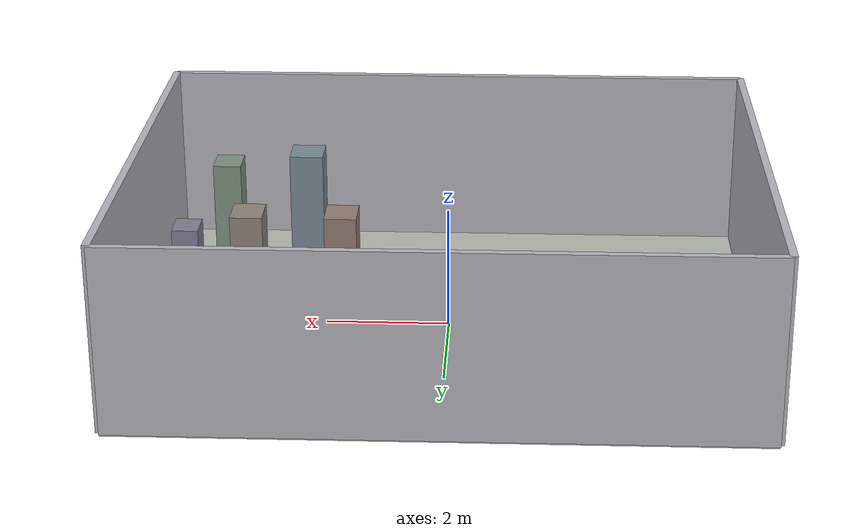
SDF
<sdf version="1.9">
 <world name="S6_cluttered_boxes">
  <physics name="1ms" type="ignore">
   <max_step_size>0.001</max_step_size>
   <real_time_factor>1.0</real_time_factor>
  </physics>
  <plugin filename="gz-sim-physics-system" name="gz::sim::systems::Physics"/>
  <plugin filename="gz-sim-sensors-system" name="gz::sim::systems::Sensors">
   <render_engine>ogre2</render_engine>
  </plugin>
  <plugin filename="gz-sim-user-commands-system" name="gz::sim::systems::UserCommands"/>
  <plugin filename="gz-sim-scene-broadcaster-system" name="gz::sim::systems::SceneBroadcaster"/>
  <plugin filename="gz-sim-imu-system" name="gz::sim::systems::Imu"/>
  <plugin filename="gz-sim-navsat-system" name="gz::sim::systems::NavSat"/>
  <scene><ambient>0.85 0.85 0.85</ambient><background>0.78 0.80 0.82</background><grid>false</grid></scene>
  <spherical_coordinates>
   <latitude_deg>-35.363262</latitude_deg>
   <longitude_deg>149.165237</longitude_deg>
   <elevation>584</elevation>
   <heading_deg>0</heading_deg>
   <surface_model>EARTH_WGS84</surface_model>
  </spherical_coordinates>
  <light type="directional" name="sun">
   <pose>0 0 8 0 0 0</pose>
   <diffuse>0.8 0.8 0.8 1</diffuse>
   <specular>0.3 0.3 0.3 1</specular>
   <attenuation>
    <range>1000</range>
    <constant>0.9</constant>
    <linear>0.01</linear>
    <quadratic>0.001</quadratic>
   </attenuation>
   <direction>-0.5 0.1 -0.9</direction>
  </light>
  <model name="l2_start_marker">
   <static>true</static>
   <pose>0.000 0.000 0.030 0 0 0</pose>
   <link name="link">
    <visual name="visual">
     <geometry><cylinder><radius>0.28</radius><length>0.04</length></cylinder></geometry>
     <material>
      <ambient>0.10 0.25 1.00 0.85</ambient>
      <diffuse>0.10 0.25 1.00 0.85</diffuse>
      <specular>0.25 0.25 0.25 1</specular>
     </material>
    </visual>
   </link>
  </model>
  <model name="l2_goal_marker">
   <static>true</static>
   <pose>4.350 0.850 0.030 0 0 0</pose>
   <link name="link">
    <visual name="visual">
     <geometry><cylinder><radius>0.28</radius><length>0.04</length></cylinder></geometry>
     <material>
      <ambient>0.00 0.80 0.20 0.85</ambient>
      <diffuse>0.00 0.80 0.20 0.85</diffuse>
      <specular>0.25 0.25 0.25 1</specular>
     </material>
    </visual>
   </link>
  </model>
  <model name="l2_floor">
   <static>true</static>
   <pose>0.000 0.000 -0.025 0 0 0</pose>
   <link name="link">
    <collision name="collision"><geometry><box><size>10.000 8.000 0.050</size></box></geometry></collision>
    <visual name="visual">
     <geometry><box><size>10.000 8.000 0.050</size></box></geometry>
     <material>
      <ambient>0.72 0.73 0.70 1</ambient>
      <diffuse>0.72 0.73 0.70 1</diffuse>
      <specular>0.25 0.25 0.25 1</specular>
     </material>
    </visual>
   </link>
  </model>
  <model name="l2_wall_x_positive">
   <static>true</static>
   <pose>5.000 0.000 1.500 0 0 0</pose>
   <link name="link">
    <collision name="collision"><geometry><box><size>0.120 8.000 3.000</size></box></geometry></collision>
    <visual name="visual">
     <geometry><box><size>0.120 8.000 3.000</size></box></geometry>
     <material>
      <ambient>0.72 0.72 0.75 1</ambient>
      <diffuse>0.72 0.72 0.75 1</diffuse>
      <specular>0.25 0.25 0.25 1</specular>
     </material>
    </visual>
   </link>
  </model>
  <model name="l2_wall_x_negative">
   <static>true</static>
   <pose>-5.000 0.000 1.500 0 0 0</pose>
   <link name="link">
    <collision name="collision"><geometry><box><size>0.120 8.000 3.000</size></box></geometry></collision>
    <visual name="visual">
     <geometry><box><size>0.120 8.000 3.000</size></box></geometry>
     <material>
      <ambient>0.72 0.72 0.75 1</ambient>
      <diffuse>0.72 0.72 0.75 1</diffuse>
      <specular>0.25 0.25 0.25 1</specular>
     </material>
    </visual>
   </link>
  </model>
  <model name="l2_wall_y_positive">
   <static>true</static>
   <pose>0.000 4.000 1.500 0 0 0</pose>
   <link name="link">
    <collision name="collision"><geometry><box><size>10.000 0.120 3.000</size></box></geometry></collision>
    <visual name="visual">
     <geometry><box><size>10.000 0.120 3.000</size></box></geometry>
     <material>
      <ambient>0.72 0.72 0.75 1</ambient>
      <diffuse>0.72 0.72 0.75 1</diffuse>
      <specular>0.25 0.25 0.25 1</specular>
     </material>
    </visual>
   </link>
  </model>
  <model name="l2_wall_y_negative">
   <static>true</static>
   <pose>0.000 -4.000 1.500 0 0 0</pose>
   <link name="link">
    <collision name="collision"><geometry><box><size>10.000 0.120 3.000</size></box></geometry></collision>
    <visual name="visual">
     <geometry><box><size>10.000 0.120 3.000</size></box></geometry>
     <material>
      <ambient>0.72 0.72 0.75 1</ambient>
      <diffuse>0.72 0.72 0.75 1</diffuse>
      <specular>0.25 0.25 0.25 1</specular>
     </material>
    </visual>
   </link>
  </model>
  <model name="clutter_box_1">
   <static>true</static>
   <pose>1.600 1.350 1.250 0 0 0</pose>
   <link name="link">
    <collision name="collision"><geometry><box><size>0.500 0.600 2.500</size></box></geometry></collision>
    <visual name="visual">
     <geometry><box><size>0.500 0.600 2.500</size></box></geometry>
     <material>
      <ambient>0.58 0.50 0.46 1</ambient>
      <diffuse>0.58 0.50 0.46 1</diffuse>
      <specular>0.25 0.25 0.25 1</specular>
     </material>
    </visual>
   </link>
  </model>
  <model name="clutter_box_2">
   <static>true</static>
   <pose>2.400 -1.350 1.250 0 0 0</pose>
   <link name="link">
    <collision name="collision"><geometry><box><size>0.550 0.600 2.500</size></box></geometry></collision>
    <visual name="visual">
     <geometry><box><size>0.550 0.600 2.500</size></box></geometry>
     <material>
      <ambient>0.48 0.55 0.60 1</ambient>
      <diffuse>0.48 0.55 0.60 1</diffuse>
      <specular>0.25 0.25 0.25 1</specular>
     </material>
    </visual>
   </link>
  </model>
  <model name="clutter_box_3">
   <static>true</static>
   <pose>3.050 1.350 1.250 0 0 0</pose>
   <link name="link">
    <collision name="collision"><geometry><box><size>0.500 0.600 2.500</size></box></geometry></collision>
    <visual name="visual">
     <geometry><box><size>0.500 0.600 2.500</size></box></geometry>
     <material>
      <ambient>0.56 0.53 0.48 1</ambient>
      <diffuse>0.56 0.53 0.48 1</diffuse>
      <specular>0.25 0.25 0.25 1</specular>
     </material>
    </visual>
   </link>
  </model>
  <model name="clutter_box_4">
   <static>true</static>
   <pose>3.650 -0.850 1.250 0 0 0</pose>
   <link name="link">
    <collision name="collision"><geometry><box><size>0.450 0.550 2.500</size></box></geometry></collision>
    <visual name="visual">
     <geometry><box><size>0.450 0.550 2.500</size></box></geometry>
     <material>
      <ambient>0.50 0.58 0.52 1</ambient>
      <diffuse>0.50 0.58 0.52 1</diffuse>
      <specular>0.25 0.25 0.25 1</specular>
     </material>
    </visual>
   </link>
  </model>
  <model name="clutter_box_5">
   <static>true</static>
   <pose>3.900 1.950 1.250 0 0 0</pose>
   <link name="link">
    <collision name="collision"><geometry><box><size>0.400 0.500 2.500</size></box></geometry></collision>
    <visual name="visual">
     <geometry><box><size>0.400 0.500 2.500</size></box></geometry>
     <material>
      <ambient>0.52 0.50 0.60 1</ambient>
      <diffuse>0.52 0.50 0.60 1</diffuse>
      <specular>0.25 0.25 0.25 1</specular>
     </material>
    </visual>
   </link>
  </model>
 </world>
</sdf>
